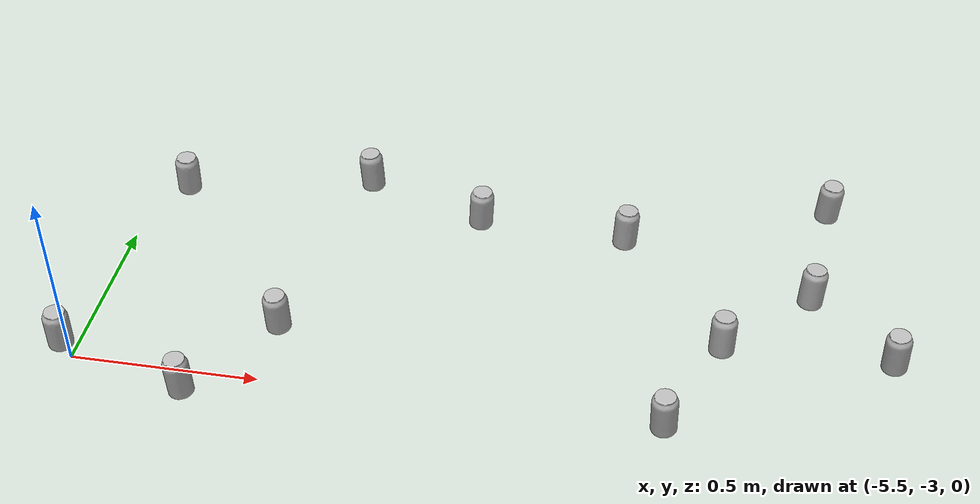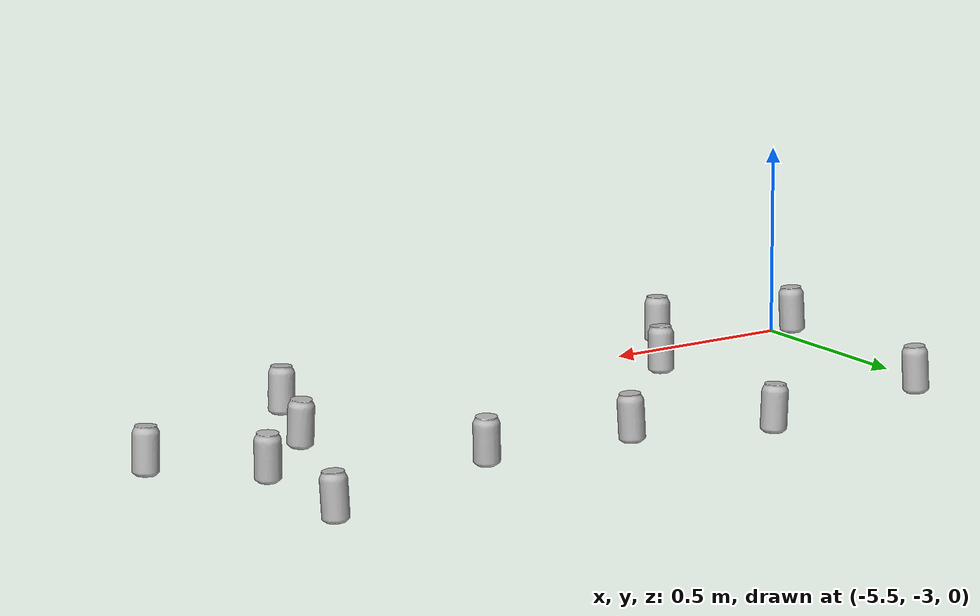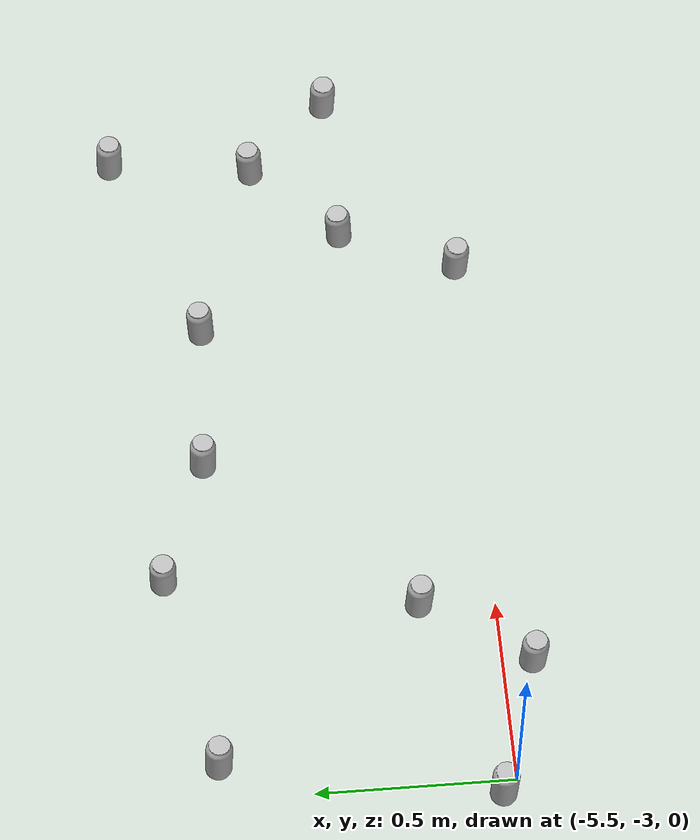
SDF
<sdf version="1.6">
 <world name="default">
  <model name="coke_can158">
   <link name="link">
    <inertial>
     <pose>0 0 0.06 0 -0 0</pose>
     <mass>0.39</mass>
     <inertia>
      <ixx>0.00055575</ixx>
      <ixy>0</ixy>
      <ixz>0</ixz>
      <iyy>0.00055575</iyy>
      <iyz>0</iyz>
      <izz>0.0001755</izz>
     </inertia>
    </inertial>
    <collision name="collision">
     <pose>0.003937 0.004724 -0.18 0 -0 0</pose>
     <geometry><mesh><uri>model://coke_can/meshes/coke_can.dae</uri></mesh></geometry>
     <surface>
      <friction><ode><mu>1</mu><mu2>1</mu2></ode></friction>
      <contact>
       <ode><kp>1e+07</kp><kd>1</kd><min_depth>0.001</min_depth><max_vel>0.1</max_vel></ode>
       <collide_bitmask>256</collide_bitmask>
      </contact>
     </surface>
    </collision>
    <visual name="visual">
     <pose>0.003937 0.004724 -0.18 0 -0 0</pose>
     <geometry><mesh><uri>model://coke_can/meshes/coke_can.dae</uri></mesh></geometry>
    </visual>
   </link>
   <pose>-4.12552 -2.30896 -0.002659 -0.055084 0.007761 -0.600705</pose>
  </model>
  <model name="coke_can192">
   <link name="link">
    <inertial>
     <pose>0 0 0.06 0 -0 0</pose>
     <mass>0.39</mass>
     <inertia>
      <ixx>0.00055575</ixx>
      <ixy>0</ixy>
      <ixz>0</ixz>
      <iyy>0.00055575</iyy>
      <iyz>0</iyz>
      <izz>0.0001755</izz>
     </inertia>
    </inertial>
    <collision name="collision">
     <pose>0.003937 0.004724 -0.18 0 -0 0</pose>
     <geometry><mesh><uri>model://coke_can/meshes/coke_can.dae</uri></mesh></geometry>
     <surface>
      <friction><ode><mu>1</mu><mu2>1</mu2></ode></friction>
      <contact>
       <ode><kp>1e+07</kp><kd>1</kd><min_depth>0.001</min_depth><max_vel>0.1</max_vel></ode>
       <collide_bitmask>256</collide_bitmask>
      </contact>
     </surface>
    </collision>
    <visual name="visual">
     <pose>0.003937 0.004724 -0.18 0 -0 0</pose>
     <geometry><mesh><uri>model://coke_can/meshes/coke_can.dae</uri></mesh></geometry>
    </visual>
   </link>
   <pose>-3.83678 -2.69983 -0.002658 -0.055085 0.00776 0.364336</pose>
  </model>
  <model name="coke_can204">
   <link name="link">
    <inertial>
     <pose>0 0 0.06 0 -0 0</pose>
     <mass>0.39</mass>
     <inertia>
      <ixx>0.00055575</ixx>
      <ixy>0</ixy>
      <ixz>0</ixz>
      <iyy>0.00055575</iyy>
      <iyz>0</iyz>
      <izz>0.0001755</izz>
     </inertia>
    </inertial>
    <collision name="collision">
     <pose>0.003937 0.004724 -0.18 0 -0 0</pose>
     <geometry><mesh><uri>model://coke_can/meshes/coke_can.dae</uri></mesh></geometry>
     <surface>
      <friction><ode><mu>1</mu><mu2>1</mu2></ode></friction>
      <contact>
       <ode><kp>1e+07</kp><kd>1</kd><min_depth>0.001</min_depth><max_vel>0.1</max_vel></ode>
       <collide_bitmask>256</collide_bitmask>
      </contact>
     </surface>
    </collision>
    <visual name="visual">
     <pose>0.003937 0.004724 -0.18 0 -0 0</pose>
     <geometry><mesh><uri>model://coke_can/meshes/coke_can.dae</uri></mesh></geometry>
    </visual>
   </link>
   <pose>-5.54132 -2.96244 -0.002659 -0.055106 0.007747 -2.35655</pose>
  </model>
  <model name="coke_can217">
   <link name="link">
    <inertial>
     <pose>0 0 0.06 0 -0 0</pose>
     <mass>0.39</mass>
     <inertia>
      <ixx>0.00055575</ixx>
      <ixy>0</ixy>
      <ixz>0</ixz>
      <iyy>0.00055575</iyy>
      <iyz>0</iyz>
      <izz>0.0001755</izz>
     </inertia>
    </inertial>
    <collision name="collision">
     <pose>0.003937 0.004724 -0.18 0 -0 0</pose>
     <geometry><mesh><uri>model://coke_can/meshes/coke_can.dae</uri></mesh></geometry>
     <surface>
      <friction><ode><mu>1</mu><mu2>1</mu2></ode></friction>
      <contact>
       <ode><kp>1e+07</kp><kd>1</kd><min_depth>0.001</min_depth><max_vel>0.1</max_vel></ode>
       <collide_bitmask>256</collide_bitmask>
      </contact>
     </surface>
    </collision>
    <visual name="visual">
     <pose>0.003937 0.004724 -0.18 0 -0 0</pose>
     <geometry><mesh><uri>model://coke_can/meshes/coke_can.dae</uri></mesh></geometry>
    </visual>
   </link>
   <pose>-5.41453 -2.27043 -0.002659 -0.055101 0.007749 -2.30839</pose>
  </model>
  <model name="coke_can301">
   <link name="link">
    <inertial>
     <pose>0 0 0.06 0 -0 0</pose>
     <mass>0.39</mass>
     <inertia>
      <ixx>0.00055575</ixx>
      <ixy>0</ixy>
      <ixz>0</ixz>
      <iyy>0.00055575</iyy>
      <iyz>0</iyz>
      <izz>0.0001755</izz>
     </inertia>
    </inertial>
    <collision name="collision">
     <pose>0.003937 0.004724 -0.18 0 -0 0</pose>
     <geometry><mesh><uri>model://coke_can/meshes/coke_can.dae</uri></mesh></geometry>
     <surface>
      <friction><ode><mu>1</mu><mu2>1</mu2></ode></friction>
      <contact>
       <ode><kp>1e+07</kp><kd>1</kd><min_depth>0.001</min_depth><max_vel>0.1</max_vel></ode>
       <collide_bitmask>256</collide_bitmask>
      </contact>
     </surface>
    </collision>
    <visual name="visual">
     <pose>0.003937 0.004724 -0.18 0 -0 0</pose>
     <geometry><mesh><uri>model://coke_can/meshes/coke_can.dae</uri></mesh></geometry>
    </visual>
   </link>
   <pose>-3.56309 -2.09292 -0.002659 -0.055093 0.007755 -2.12649</pose>
  </model>
  <model name="coke_can327">
   <link name="link">
    <inertial>
     <pose>0 0 0.06 0 -0 0</pose>
     <mass>0.39</mass>
     <inertia>
      <ixx>0.00055575</ixx>
      <ixy>0</ixy>
      <ixz>0</ixz>
      <iyy>0.00055575</iyy>
      <iyz>0</iyz>
      <izz>0.0001755</izz>
     </inertia>
    </inertial>
    <collision name="collision">
     <pose>0.003937 0.004724 -0.18 0 -0 0</pose>
     <geometry><mesh><uri>model://coke_can/meshes/coke_can.dae</uri></mesh></geometry>
     <surface>
      <friction><ode><mu>1</mu><mu2>1</mu2></ode></friction>
      <contact>
       <ode><kp>1e+07</kp><kd>1</kd><min_depth>0.001</min_depth><max_vel>0.1</max_vel></ode>
       <collide_bitmask>256</collide_bitmask>
      </contact>
     </surface>
    </collision>
    <visual name="visual">
     <pose>0.003937 0.004724 -0.18 0 -0 0</pose>
     <geometry><mesh><uri>model://coke_can/meshes/coke_can.dae</uri></mesh></geometry>
    </visual>
   </link>
   <pose>-3.39691 -2.6875 -0.002659 -0.055087 0.007759 2.46249</pose>
  </model>
  <model name="coke_can430">
   <link name="link">
    <inertial>
     <pose>0 0 0.06 0 -0 0</pose>
     <mass>0.39</mass>
     <inertia>
      <ixx>0.00055575</ixx>
      <ixy>0</ixy>
      <ixz>0</ixz>
      <iyy>0.00055575</iyy>
      <iyz>0</iyz>
      <izz>0.0001755</izz>
     </inertia>
    </inertial>
    <collision name="collision">
     <pose>0.003937 0.004724 -0.18 0 -0 0</pose>
     <geometry><mesh><uri>model://coke_can/meshes/coke_can.dae</uri></mesh></geometry>
     <surface>
      <friction><ode><mu>1</mu><mu2>1</mu2></ode></friction>
      <contact>
       <ode><kp>1e+07</kp><kd>1</kd><min_depth>0.001</min_depth><max_vel>0.1</max_vel></ode>
       <collide_bitmask>256</collide_bitmask>
      </contact>
     </surface>
    </collision>
    <visual name="visual">
     <pose>0.003937 0.004724 -0.18 0 -0 0</pose>
     <geometry><mesh><uri>model://coke_can/meshes/coke_can.dae</uri></mesh></geometry>
    </visual>
   </link>
   <pose>-5.17728 -3.07415 -0.002659 -0.055091 0.007757 2.84931</pose>
  </model>
  <model name="coke_can528">
   <link name="link">
    <inertial>
     <pose>0 0 0.06 0 -0 0</pose>
     <mass>0.39</mass>
     <inertia>
      <ixx>0.00055575</ixx>
      <ixy>0</ixy>
      <ixz>0</ixz>
      <iyy>0.00055575</iyy>
      <iyz>0</iyz>
      <izz>0.0001755</izz>
     </inertia>
    </inertial>
    <collision name="collision">
     <pose>0.003937 0.004724 -0.18 0 -0 0</pose>
     <geometry><mesh><uri>model://coke_can/meshes/coke_can.dae</uri></mesh></geometry>
     <surface>
      <friction><ode><mu>1</mu><mu2>1</mu2></ode></friction>
      <contact>
       <ode><kp>1e+07</kp><kd>1</kd><min_depth>0.001</min_depth><max_vel>0.1</max_vel></ode>
       <collide_bitmask>256</collide_bitmask>
      </contact>
     </surface>
    </collision>
    <visual name="visual">
     <pose>0.003937 0.004724 -0.18 0 -0 0</pose>
     <geometry><mesh><uri>model://coke_can/meshes/coke_can.dae</uri></mesh></geometry>
    </visual>
   </link>
   <pose>-4.99687 -2.80387 -0.002659 -0.055104 0.007749 3.01881</pose>
  </model>
  <model name="coke_can558">
   <link name="link">
    <inertial>
     <pose>0 0 0.06 0 -0 0</pose>
     <mass>0.39</mass>
     <inertia>
      <ixx>0.00055575</ixx>
      <ixy>0</ixy>
      <ixz>0</ixz>
      <iyy>0.00055575</iyy>
      <iyz>0</iyz>
      <izz>0.0001755</izz>
     </inertia>
    </inertial>
    <collision name="collision">
     <pose>0.003937 0.004724 -0.18 0 -0 0</pose>
     <geometry><mesh><uri>model://coke_can/meshes/coke_can.dae</uri></mesh></geometry>
     <surface>
      <friction><ode><mu>1</mu><mu2>1</mu2></ode></friction>
      <contact>
       <ode><kp>1e+07</kp><kd>1</kd><min_depth>0.001</min_depth><max_vel>0.1</max_vel></ode>
       <collide_bitmask>256</collide_bitmask>
      </contact>
     </surface>
    </collision>
    <visual name="visual">
     <pose>0.003937 0.004724 -0.18 0 -0 0</pose>
     <geometry><mesh><uri>model://coke_can/meshes/coke_can.dae</uri></mesh></geometry>
    </visual>
   </link>
   <pose>-4.88166 -2.16418 -0.002659 -0.055129 0.007729 1.96696</pose>
  </model>
  <model name="coke_can588">
   <link name="link">
    <inertial>
     <pose>0 0 0.06 0 -0 0</pose>
     <mass>0.39</mass>
     <inertia>
      <ixx>0.00055575</ixx>
      <ixy>0</ixy>
      <ixz>0</ixz>
      <iyy>0.00055575</iyy>
      <iyz>0</iyz>
      <izz>0.0001755</izz>
     </inertia>
    </inertial>
    <collision name="collision">
     <pose>0.003937 0.004724 -0.18 0 -0 0</pose>
     <geometry><mesh><uri>model://coke_can/meshes/coke_can.dae</uri></mesh></geometry>
     <surface>
      <friction><ode><mu>1</mu><mu2>1</mu2></ode></friction>
      <contact>
       <ode><kp>1e+07</kp><kd>1</kd><min_depth>0.001</min_depth><max_vel>0.1</max_vel></ode>
       <collide_bitmask>256</collide_bitmask>
      </contact>
     </surface>
    </collision>
    <visual name="visual">
     <pose>0.003937 0.004724 -0.18 0 -0 0</pose>
     <geometry><mesh><uri>model://coke_can/meshes/coke_can.dae</uri></mesh></geometry>
    </visual>
   </link>
   <pose>-3.96562 -2.99929 -0.002659 -0.055086 0.007759 2.50916</pose>
  </model>
  <model name="coke_can825">
   <link name="link">
    <inertial>
     <pose>0 0 0.06 0 -0 0</pose>
     <mass>0.39</mass>
     <inertia>
      <ixx>0.00055575</ixx>
      <ixy>0</ixy>
      <ixz>0</ixz>
      <iyy>0.00055575</iyy>
      <iyz>0</iyz>
      <izz>0.0001755</izz>
     </inertia>
    </inertial>
    <collision name="collision">
     <pose>0.003937 0.004724 -0.18 0 -0 0</pose>
     <geometry><mesh><uri>model://coke_can/meshes/coke_can.dae</uri></mesh></geometry>
     <surface>
      <friction><ode><mu>1</mu><mu2>1</mu2></ode></friction>
      <contact>
       <ode><kp>1e+07</kp><kd>1</kd><min_depth>0.001</min_depth><max_vel>0.1</max_vel></ode>
       <collide_bitmask>256</collide_bitmask>
      </contact>
     </surface>
    </collision>
    <visual name="visual">
     <pose>0.003937 0.004724 -0.18 0 -0 0</pose>
     <geometry><mesh><uri>model://coke_can/meshes/coke_can.dae</uri></mesh></geometry>
    </visual>
   </link>
   <pose>-4.54024 -2.28703 -0.002659 -0.055094 0.007753 -1.98509</pose>
  </model>
  <model name="coke_can864">
   <link name="link">
    <inertial>
     <pose>0 0 0.06 0 -0 0</pose>
     <mass>0.39</mass>
     <inertia>
      <ixx>0.00055575</ixx>
      <ixy>0</ixy>
      <ixz>0</ixz>
      <iyy>0.00055575</iyy>
      <iyz>0</iyz>
      <izz>0.0001755</izz>
     </inertia>
    </inertial>
    <collision name="collision">
     <pose>0.003937 0.004724 -0.18 0 -0 0</pose>
     <geometry><mesh><uri>model://coke_can/meshes/coke_can.dae</uri></mesh></geometry>
     <surface>
      <friction><ode><mu>1</mu><mu2>1</mu2></ode></friction>
      <contact>
       <ode><kp>1e+07</kp><kd>1</kd><min_depth>0.001</min_depth><max_vel>0.1</max_vel></ode>
       <collide_bitmask>256</collide_bitmask>
      </contact>
     </surface>
    </collision>
    <visual name="visual">
     <pose>0.003937 0.004724 -0.18 0 -0 0</pose>
     <geometry><mesh><uri>model://coke_can/meshes/coke_can.dae</uri></mesh></geometry>
    </visual>
   </link>
   <pose>-3.60949 -2.47561 -0.002659 -0.055089 0.007756 -0.290874</pose>
  </model>
 </world>
</sdf>
